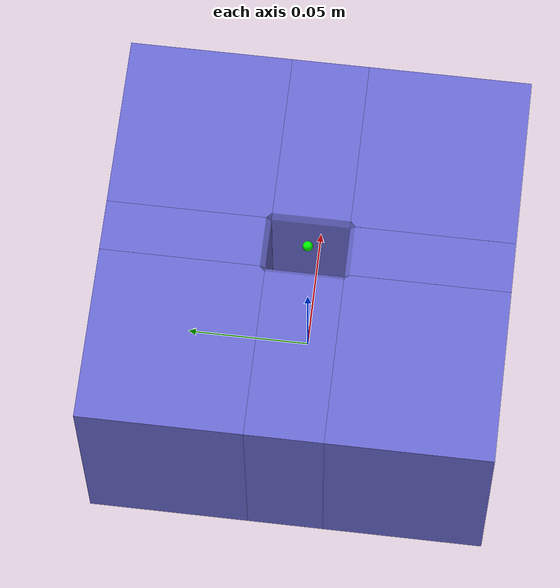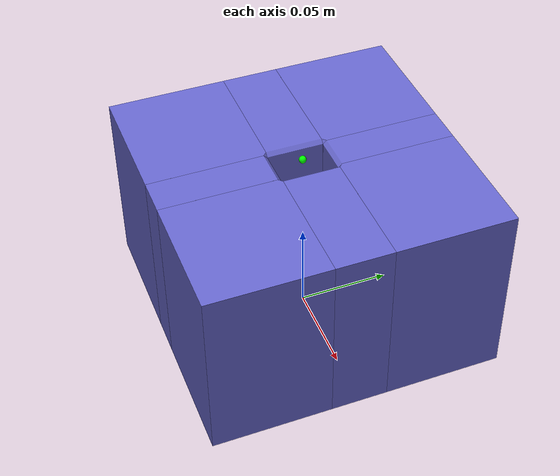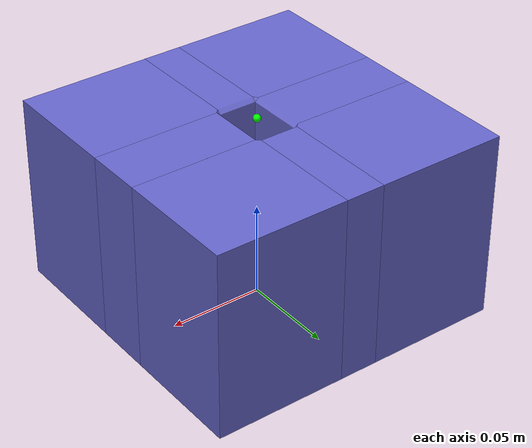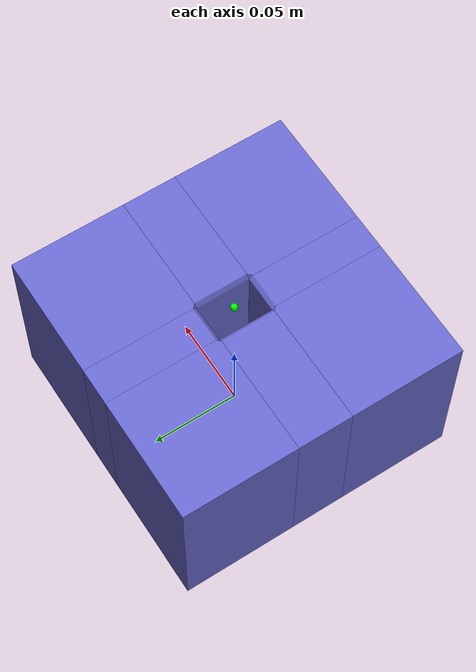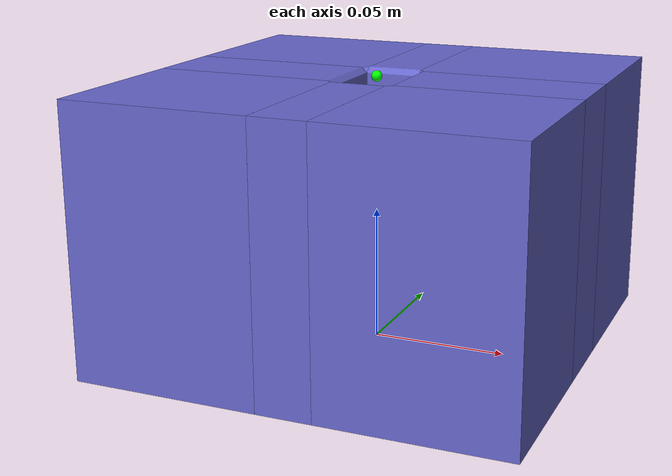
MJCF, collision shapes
<mujoco model="hole_rect_s_medium">
  <asset>
    <mesh name="hole_rect_s_medium_visual" file="meshes/hole_rect_s_medium.stl" scale="0.001 0.001 0.001"/>
    <mesh name="hole_rect_s_medium_col_0" file="meshes/hole_rect_s_medium_col_0.stl" scale="0.001 0.001 0.001"/>
    <mesh name="hole_rect_s_medium_col_1" file="meshes/hole_rect_s_medium_col_1.stl" scale="0.001 0.001 0.001"/>
    <mesh name="hole_rect_s_medium_col_2" file="meshes/hole_rect_s_medium_col_2.stl" scale="0.001 0.001 0.001"/>
    <mesh name="hole_rect_s_medium_col_3" file="meshes/hole_rect_s_medium_col_3.stl" scale="0.001 0.001 0.001"/>
    <mesh name="hole_rect_s_medium_col_4" file="meshes/hole_rect_s_medium_col_4.stl" scale="0.001 0.001 0.001"/>
    <mesh name="hole_rect_s_medium_col_5" file="meshes/hole_rect_s_medium_col_5.stl" scale="0.001 0.001 0.001"/>
    <mesh name="hole_rect_s_medium_col_6" file="meshes/hole_rect_s_medium_col_6.stl" scale="0.001 0.001 0.001"/>
    <mesh name="hole_rect_s_medium_col_7" file="meshes/hole_rect_s_medium_col_7.stl" scale="0.001 0.001 0.001"/>
  </asset>

  <worldbody>
    <body name="fixture" pos="0 0 0">
      <geom name="hole_rect_s_medium_visual" type="mesh" mesh="hole_rect_s_medium_visual"
            contype="0" conaffinity="0"
            rgba="0.4 0.4 0.8 1.0"/>
      <geom name="hole_rect_s_medium_col_0" type="mesh" mesh="hole_rect_s_medium_col_0"
            rgba="0.4 0.4 0.8 0.0"
            friction="0.2 0.005 0.0001"
            solref="0.02 1"
            solimp="0.9 0.95 0.001"/>
      <geom name="hole_rect_s_medium_col_1" type="mesh" mesh="hole_rect_s_medium_col_1"
            rgba="0.4 0.4 0.8 0.0"
            friction="0.2 0.005 0.0001"
            solref="0.02 1"
            solimp="0.9 0.95 0.001"/>
      <geom name="hole_rect_s_medium_col_2" type="mesh" mesh="hole_rect_s_medium_col_2"
            rgba="0.4 0.4 0.8 0.0"
            friction="0.2 0.005 0.0001"
            solref="0.02 1"
            solimp="0.9 0.95 0.001"/>
      <geom name="hole_rect_s_medium_col_3" type="mesh" mesh="hole_rect_s_medium_col_3"
            rgba="0.4 0.4 0.8 0.0"
            friction="0.2 0.005 0.0001"
            solref="0.02 1"
            solimp="0.9 0.95 0.001"/>
      <geom name="hole_rect_s_medium_col_4" type="mesh" mesh="hole_rect_s_medium_col_4"
            rgba="0.4 0.4 0.8 0.0"
            friction="0.2 0.005 0.0001"
            solref="0.02 1"
            solimp="0.9 0.95 0.001"/>
      <geom name="hole_rect_s_medium_col_5" type="mesh" mesh="hole_rect_s_medium_col_5"
            rgba="0.4 0.4 0.8 0.0"
            friction="0.2 0.005 0.0001"
            solref="0.02 1"
            solimp="0.9 0.95 0.001"/>
      <geom name="hole_rect_s_medium_col_6" type="mesh" mesh="hole_rect_s_medium_col_6"
            rgba="0.4 0.4 0.8 0.0"
            friction="0.2 0.005 0.0001"
            solref="0.02 1"
            solimp="0.9 0.95 0.001"/>
      <geom name="hole_rect_s_medium_col_7" type="mesh" mesh="hole_rect_s_medium_col_7"
            rgba="0.4 0.4 0.8 0.0"
            friction="0.2 0.005 0.0001"
            solref="0.02 1"
            solimp="0.9 0.95 0.001"/>

      <site name="hole_entrance" pos="0 0 0.1" size="0.002" rgba="0 1 0 1"/>
      <site name="hole_bottom"   pos="0 0 0.0" size="0.002" rgba="0 0 1 1"/>
    </body>
  </worldbody>
</mujoco>
